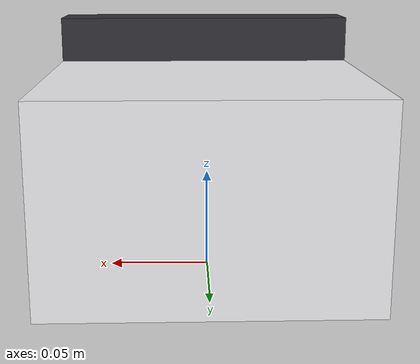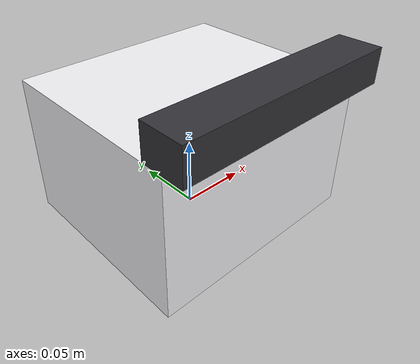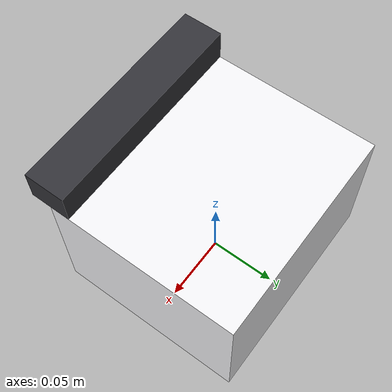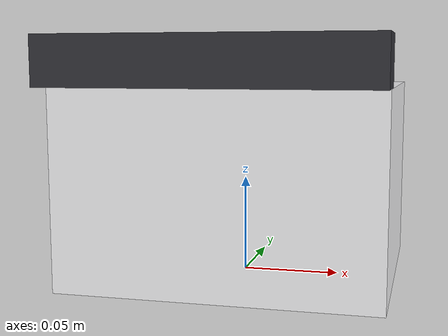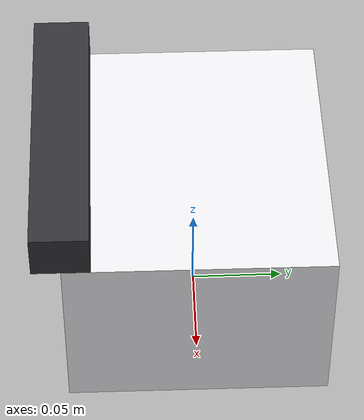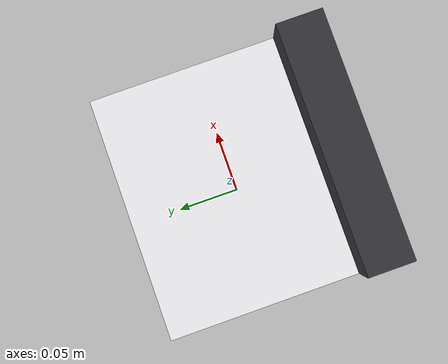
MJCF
<?xml version="1.0" encoding="utf-8"?>
<mujoco model="real_lab_sheffield_university_chromium">
  <compiler angle="radian" autolimits="true"/>
  <default>
    <default class="body"><geom contype="1" conaffinity="1"/></default>
  </default>
  <worldbody>
    <body name="base">
      <geom type="box" size="0.08 0.07 0.05" pos="0 0 0.05" rgba="0.95 0.95 0.96 1" class="body"/>
      <body name="lid" pos="0 -0.07 0.1">
        <joint name="lid_joint" type="hinge" axis="0 1 0" range="0 1.5" damping="0.6" frictionloss="0.25"/>
  <geom type="box" size="0.08 0.015 0.012" pos="0 0 0.012" rgba="0.2 0.2 0.22 1" class="body"/>
      </body>
    </body>
  </worldbody>
</mujoco>
